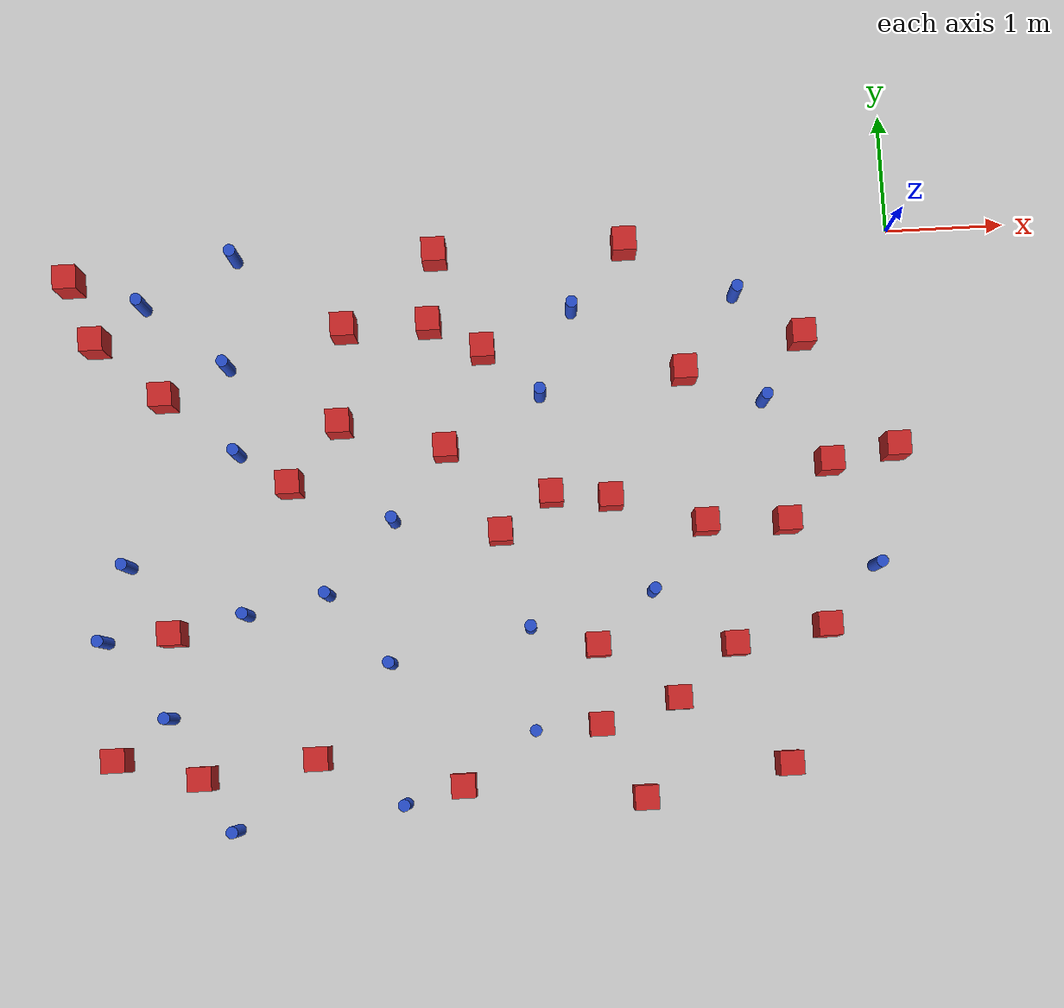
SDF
<sdf version="1.6">
 <world name="default">
  <model name="ground_plane">
   <static>1</static>
   <link name="link">
    <collision name="collision">
     <geometry><plane><normal>0 0 1</normal><size>100 100</size></plane></geometry>
     <surface><friction><ode><mu>100</mu><mu2>50</mu2></ode></friction></surface>
    </collision>
    <visual name="visual">
     <cast_shadows>0</cast_shadows>
     <geometry><plane><normal>0 0 1</normal><size>100 100</size></plane></geometry>
     <material>
      <ambient>1.0 1.0 1.0 1.0</ambient>
      <diffuse>0.8 0.8 0.8 1.0</diffuse>
      <specular>0.01 0.01 0.01 1.000000</specular>
     </material>
    </visual>
   </link>
  </model>
  <model name="NamedLocations">
   <static>true</static>
   <link name="DefaultStart"><pose>8.5 0 0 0 0 3.14</pose></link>
  </model>
  <model name="pole_obstacle3">
   <static>true</static>
   <pose>-3.22854497881 -3.2241212112 7.38925637345e-09 -8.47170692798e-08 1.24976764939e-08 -1.74513093025e-07</pose>
   <link name="link">
    <pose>0 0 0.3 0 -0 0</pose>
    <inertial>
     <mass>1</mass>
     <inertia><ixx>0.145833</ixx><ixy>0</ixy><ixz>0</ixz><iyy>0.145833</iyy><iyz>0</iyz><izz>0.125</izz></inertia>
    </inertial>
    <collision name="collision">
     <geometry><cylinder><radius>0.05</radius><length>.6</length></cylinder></geometry>
    </collision>
    <visual name="visual">
     <geometry><cylinder><radius>0.05</radius><length>.6</length></cylinder></geometry>
     <material>
      <script><name>Gazebo/Blue</name><uri>file://media/materials/scripts/gazebo.material</uri></script>
     </material>
    </visual>
   </link>
  </model>
  <model name="square_post_obstacle9">
   <static>true</static>
   <pose>-6.21314475476 -3.11580923219 1.91545236811e-07 -7.35059704564e-06 1.12565212e-07 2.39332434364e-05</pose>
   <link name="link">
    <pose>0 0 0.25 0 -0 0</pose>
    <inertial>
     <mass>100</mass>
     <inertia>
      <ixx>0.166667</ixx>
      <ixy>0</ixy>
      <ixz>0</ixz>
      <iyy>0.166667</iyy>
      <iyz>0</iyz>
      <izz>0.166667</izz>
     </inertia>
    </inertial>
    <collision name="collision"><geometry><box><size>.2 .2 .5</size></box></geometry></collision>
    <visual name="visual">
     <geometry><box><size>.2 .2 .5</size></box></geometry>
     <material>
      <script><name>Gazebo/Red</name><uri>file://media/materials/scripts/gazebo.material</uri></script>
     </material>
    </visual>
   </link>
  </model>
  <model name="square_post_obstacle10">
   <static>true</static>
   <pose>-0.647487318946 -1.97284515534 1.91545236811e-07 -7.35059704564e-06 1.12565212e-07 2.39332434364e-05</pose>
   <link name="link">
    <pose>0 0 0.25 0 -0 0</pose>
    <inertial>
     <mass>100</mass>
     <inertia>
      <ixx>0.166667</ixx>
      <ixy>0</ixy>
      <ixz>0</ixz>
      <iyy>0.166667</iyy>
      <iyz>0</iyz>
      <izz>0.166667</izz>
     </inertia>
    </inertial>
    <collision name="collision"><geometry><box><size>.2 .2 .5</size></box></geometry></collision>
    <visual name="visual">
     <geometry><box><size>.2 .2 .5</size></box></geometry>
     <material>
      <script><name>Gazebo/Red</name><uri>file://media/materials/scripts/gazebo.material</uri></script>
     </material>
    </visual>
   </link>
  </model>
  <model name="square_post_obstacle14">
   <static>true</static>
   <pose>-5.18274120243 -1.91572686425 1.91545236811e-07 -7.35059704564e-06 1.12565212e-07 2.39332434364e-05</pose>
   <link name="link">
    <pose>0 0 0.25 0 -0 0</pose>
    <inertial>
     <mass>100</mass>
     <inertia>
      <ixx>0.166667</ixx>
      <ixy>0</ixy>
      <ixz>0</ixz>
      <iyy>0.166667</iyy>
      <iyz>0</iyz>
      <izz>0.166667</izz>
     </inertia>
    </inertial>
    <collision name="collision"><geometry><box><size>.2 .2 .5</size></box></geometry></collision>
    <visual name="visual">
     <geometry><box><size>.2 .2 .5</size></box></geometry>
     <material>
      <script><name>Gazebo/Red</name><uri>file://media/materials/scripts/gazebo.material</uri></script>
     </material>
    </visual>
   </link>
  </model>
  <model name="square_post_obstacle17">
   <static>true</static>
   <pose>-1.71797052306 -2.42439164931 1.91545236811e-07 -7.35059704564e-06 1.12565212e-07 2.39332434364e-05</pose>
   <link name="link">
    <pose>0 0 0.25 0 -0 0</pose>
    <inertial>
     <mass>100</mass>
     <inertia>
      <ixx>0.166667</ixx>
      <ixy>0</ixy>
      <ixz>0</ixz>
      <iyy>0.166667</iyy>
      <iyz>0</iyz>
      <izz>0.166667</izz>
     </inertia>
    </inertial>
    <collision name="collision"><geometry><box><size>.2 .2 .5</size></box></geometry></collision>
    <visual name="visual">
     <geometry><box><size>.2 .2 .5</size></box></geometry>
     <material>
      <script><name>Gazebo/Red</name><uri>file://media/materials/scripts/gazebo.material</uri></script>
     </material>
    </visual>
   </link>
  </model>
  <model name="square_post_obstacle21">
   <static>true</static>
   <pose>-3.50732691726 -0.857823967843 1.91545236811e-07 -7.35059704564e-06 1.12565212e-07 2.39332434364e-05</pose>
   <link name="link">
    <pose>0 0 0.25 0 -0 0</pose>
    <inertial>
     <mass>100</mass>
     <inertia>
      <ixx>0.166667</ixx>
      <ixy>0</ixy>
      <ixz>0</ixz>
      <iyy>0.166667</iyy>
      <iyz>0</iyz>
      <izz>0.166667</izz>
     </inertia>
    </inertial>
    <collision name="collision"><geometry><box><size>.2 .2 .5</size></box></geometry></collision>
    <visual name="visual">
     <geometry><box><size>.2 .2 .5</size></box></geometry>
     <material>
      <script><name>Gazebo/Red</name><uri>file://media/materials/scripts/gazebo.material</uri></script>
     </material>
    </visual>
   </link>
  </model>
  <model name="square_post_obstacle24">
   <static>true</static>
   <pose>-4.74259793612 -1.42740261297 1.91545236811e-07 -7.35059704564e-06 1.12565212e-07 2.39332434364e-05</pose>
   <link name="link">
    <pose>0 0 0.25 0 -0 0</pose>
    <inertial>
     <mass>100</mass>
     <inertia>
      <ixx>0.166667</ixx>
      <ixy>0</ixy>
      <ixz>0</ixz>
      <iyy>0.166667</iyy>
      <iyz>0</iyz>
      <izz>0.166667</izz>
     </inertia>
    </inertial>
    <collision name="collision"><geometry><box><size>.2 .2 .5</size></box></geometry></collision>
    <visual name="visual">
     <geometry><box><size>.2 .2 .5</size></box></geometry>
     <material>
      <script><name>Gazebo/Red</name><uri>file://media/materials/scripts/gazebo.material</uri></script>
     </material>
    </visual>
   </link>
  </model>
  <model name="square_post_obstacle25">
   <static>true</static>
   <pose>-0.086212886297 -1.87562634025 1.91545236811e-07 -7.35059704564e-06 1.12565212e-07 2.39332434364e-05</pose>
   <link name="link">
    <pose>0 0 0.25 0 -0 0</pose>
    <inertial>
     <mass>100</mass>
     <inertia>
      <ixx>0.166667</ixx>
      <ixy>0</ixy>
      <ixz>0</ixz>
      <iyy>0.166667</iyy>
      <iyz>0</iyz>
      <izz>0.166667</izz>
     </inertia>
    </inertial>
    <collision name="collision"><geometry><box><size>.2 .2 .5</size></box></geometry></collision>
    <visual name="visual">
     <geometry><box><size>.2 .2 .5</size></box></geometry>
     <material>
      <script><name>Gazebo/Red</name><uri>file://media/materials/scripts/gazebo.material</uri></script>
     </material>
    </visual>
   </link>
  </model>
  <model name="pole_obstacle24">
   <static>true</static>
   <pose>-4.32802515514 -2.26667749467 7.38925637345e-09 -8.47170692798e-08 1.24976764937e-08 -1.74513093023e-07</pose>
   <link name="link">
    <pose>0 0 0.3 0 -0 0</pose>
    <inertial>
     <mass>1</mass>
     <inertia><ixx>0.145833</ixx><ixy>0</ixy><ixz>0</ixz><iyy>0.145833</iyy><iyz>0</iyz><izz>0.125</izz></inertia>
    </inertial>
    <collision name="collision">
     <geometry><cylinder><radius>0.05</radius><length>.6</length></cylinder></geometry>
    </collision>
    <visual name="visual">
     <geometry><cylinder><radius>0.05</radius><length>.6</length></cylinder></geometry>
     <material>
      <script><name>Gazebo/Blue</name><uri>file://media/materials/scripts/gazebo.material</uri></script>
     </material>
    </visual>
   </link>
  </model>
  <model name="pole_obstacle25">
   <static>true</static>
   <pose>-1.16329254823 -1.415198224 7.38925637345e-09 -8.471706928e-08 1.24976765079e-08 -1.74513093017e-07</pose>
   <link name="link">
    <pose>0 0 0.3 0 -0 0</pose>
    <inertial>
     <mass>1</mass>
     <inertia><ixx>0.145833</ixx><ixy>0</ixy><ixz>0</ixz><iyy>0.145833</iyy><iyz>0</iyz><izz>0.125</izz></inertia>
    </inertial>
    <collision name="collision">
     <geometry><cylinder><radius>0.05</radius><length>.6</length></cylinder></geometry>
    </collision>
    <visual name="visual">
     <geometry><cylinder><radius>0.05</radius><length>.6</length></cylinder></geometry>
     <material>
      <script><name>Gazebo/Blue</name><uri>file://media/materials/scripts/gazebo.material</uri></script>
     </material>
    </visual>
   </link>
  </model>
  <model name="pole_obstacle27">
   <static>true</static>
   <pose>-5.74672465251 -4.76837645769 7.38925637345e-09 -8.47170692796e-08 1.24976764786e-08 -1.74513093032e-07</pose>
   <link name="link">
    <pose>0 0 0.3 0 -0 0</pose>
    <inertial>
     <mass>1</mass>
     <inertia><ixx>0.145833</ixx><ixy>0</ixy><ixz>0</ixz><iyy>0.145833</iyy><iyz>0</iyz><izz>0.125</izz></inertia>
    </inertial>
    <collision name="collision">
     <geometry><cylinder><radius>0.05</radius><length>.6</length></cylinder></geometry>
    </collision>
    <visual name="visual">
     <geometry><cylinder><radius>0.05</radius><length>.6</length></cylinder></geometry>
     <material>
      <script><name>Gazebo/Blue</name><uri>file://media/materials/scripts/gazebo.material</uri></script>
     </material>
    </visual>
   </link>
  </model>
  <model name="square_post_obstacle32">
   <static>true</static>
   <pose>-3.43588751057 -2.40915940986 1.91545236811e-07 -7.35059704564e-06 1.12565212e-07 2.39332434364e-05</pose>
   <link name="link">
    <pose>0 0 0.25 0 -0 0</pose>
    <inertial>
     <mass>100</mass>
     <inertia>
      <ixx>0.166667</ixx>
      <ixy>0</ixy>
      <ixz>0</ixz>
      <iyy>0.166667</iyy>
      <iyz>0</iyz>
      <izz>0.166667</izz>
     </inertia>
    </inertial>
    <collision name="collision"><geometry><box><size>.2 .2 .5</size></box></geometry></collision>
    <visual name="visual">
     <geometry><box><size>.2 .2 .5</size></box></geometry>
     <material>
      <script><name>Gazebo/Red</name><uri>file://media/materials/scripts/gazebo.material</uri></script>
     </material>
    </visual>
   </link>
  </model>
  <model name="pole_obstacle30">
   <static>true</static>
   <pose>-6.35883680301 -0.332967924212 7.38925637345e-09 -8.47170692798e-08 1.24976765003e-08 -1.7451309302e-07</pose>
   <link name="link">
    <pose>0 0 0.3 0 -0 0</pose>
    <inertial>
     <mass>1</mass>
     <inertia><ixx>0.145833</ixx><ixy>0</ixy><ixz>0</ixz><iyy>0.145833</iyy><iyz>0</iyz><izz>0.125</izz></inertia>
    </inertial>
    <collision name="collision">
     <geometry><cylinder><radius>0.05</radius><length>.6</length></cylinder></geometry>
    </collision>
    <visual name="visual">
     <geometry><cylinder><radius>0.05</radius><length>.6</length></cylinder></geometry>
     <material>
      <script><name>Gazebo/Blue</name><uri>file://media/materials/scripts/gazebo.material</uri></script>
     </material>
    </visual>
   </link>
  </model>
  <model name="pole_obstacle31">
   <static>true</static>
   <pose>-1.35423960804 -0.498178328608 7.38925637345e-09 -8.47170692799e-08 1.24976765044e-08 -1.74513093018e-07</pose>
   <link name="link">
    <pose>0 0 0.3 0 -0 0</pose>
    <inertial>
     <mass>1</mass>
     <inertia><ixx>0.145833</ixx><ixy>0</ixy><ixz>0</ixz><iyy>0.145833</iyy><iyz>0</iyz><izz>0.125</izz></inertia>
    </inertial>
    <collision name="collision">
     <geometry><cylinder><radius>0.05</radius><length>.6</length></cylinder></geometry>
    </collision>
    <visual name="visual">
     <geometry><cylinder><radius>0.05</radius><length>.6</length></cylinder></geometry>
     <material>
      <script><name>Gazebo/Blue</name><uri>file://media/materials/scripts/gazebo.material</uri></script>
     </material>
    </visual>
   </link>
  </model>
  <model name="square_post_obstacle42">
   <static>true</static>
   <pose>-1.82140552525 -1.13301786784 1.91545236811e-07 -7.35059704564e-06 1.12565212e-07 2.39332434364e-05</pose>
   <link name="link">
    <pose>0 0 0.25 0 -0 0</pose>
    <inertial>
     <mass>100</mass>
     <inertia>
      <ixx>0.166667</ixx>
      <ixy>0</ixy>
      <ixz>0</ixz>
      <iyy>0.166667</iyy>
      <iyz>0</iyz>
      <izz>0.166667</izz>
     </inertia>
    </inertial>
    <collision name="collision"><geometry><box><size>.2 .2 .5</size></box></geometry></collision>
    <visual name="visual">
     <geometry><box><size>.2 .2 .5</size></box></geometry>
     <material>
      <script><name>Gazebo/Red</name><uri>file://media/materials/scripts/gazebo.material</uri></script>
     </material>
    </visual>
   </link>
  </model>
  <model name="square_post_obstacle58">
   <static>true</static>
   <pose>-3.85292107735 -4.50054488396 1.91545236811e-07 -7.35059704564e-06 1.12565212e-07 2.39332434364e-05</pose>
   <link name="link">
    <pose>0 0 0.25 0 -0 0</pose>
    <inertial>
     <mass>100</mass>
     <inertia>
      <ixx>0.166667</ixx>
      <ixy>0</ixy>
      <ixz>0</ixz>
      <iyy>0.166667</iyy>
      <iyz>0</iyz>
      <izz>0.166667</izz>
     </inertia>
    </inertial>
    <collision name="collision"><geometry><box><size>.2 .2 .5</size></box></geometry></collision>
    <visual name="visual">
     <geometry><box><size>.2 .2 .5</size></box></geometry>
     <material>
      <script><name>Gazebo/Red</name><uri>file://media/materials/scripts/gazebo.material</uri></script>
     </material>
    </visual>
   </link>
  </model>
  <model name="pole_obstacle57">
   <static>true</static>
   <pose>-5.60784473028 -1.63386733325 7.38925637345e-09 -8.471706928e-08 1.24976765134e-08 -1.74513093015e-07</pose>
   <link name="link">
    <pose>0 0 0.3 0 -0 0</pose>
    <inertial>
     <mass>1</mass>
     <inertia><ixx>0.145833</ixx><ixy>0</ixy><ixz>0</ixz><iyy>0.145833</iyy><iyz>0</iyz><izz>0.125</izz></inertia>
    </inertial>
    <collision name="collision">
     <geometry><cylinder><radius>0.05</radius><length>.6</length></cylinder></geometry>
    </collision>
    <visual name="visual">
     <geometry><cylinder><radius>0.05</radius><length>.6</length></cylinder></geometry>
     <material>
      <script><name>Gazebo/Blue</name><uri>file://media/materials/scripts/gazebo.material</uri></script>
     </material>
    </visual>
   </link>
  </model>
  <model name="square_post_obstacle62">
   <static>true</static>
   <pose>-3.95068067496 -0.612505758694 1.91545236811e-07 -7.35059704564e-06 1.12565212e-07 2.39332434364e-05</pose>
   <link name="link">
    <pose>0 0 0.25 0 -0 0</pose>
    <inertial>
     <mass>100</mass>
     <inertia>
      <ixx>0.166667</ixx>
      <ixy>0</ixy>
      <ixz>0</ixz>
      <iyy>0.166667</iyy>
      <iyz>0</iyz>
      <izz>0.166667</izz>
     </inertia>
    </inertial>
    <collision name="collision"><geometry><box><size>.2 .2 .5</size></box></geometry></collision>
    <visual name="visual">
     <geometry><box><size>.2 .2 .5</size></box></geometry>
     <material>
      <script><name>Gazebo/Red</name><uri>file://media/materials/scripts/gazebo.material</uri></script>
     </material>
    </visual>
   </link>
  </model>
  <model name="square_post_obstacle73">
   <static>true</static>
   <pose>-2.26619205276 -0.0246965889448 1.91545236811e-07 -7.35059704564e-06 1.12565212e-07 2.39332434364e-05</pose>
   <link name="link">
    <pose>0 0 0.25 0 -0 0</pose>
    <inertial>
     <mass>100</mass>
     <inertia>
      <ixx>0.166667</ixx>
      <ixy>0</ixy>
      <ixz>0</ixz>
      <iyy>0.166667</iyy>
      <iyz>0</iyz>
      <izz>0.166667</izz>
     </inertia>
    </inertial>
    <collision name="collision"><geometry><box><size>.2 .2 .5</size></box></geometry></collision>
    <visual name="visual">
     <geometry><box><size>.2 .2 .5</size></box></geometry>
     <material>
      <script><name>Gazebo/Red</name><uri>file://media/materials/scripts/gazebo.material</uri></script>
     </material>
    </visual>
   </link>
  </model>
  <model name="pole_obstacle71">
   <static>true</static>
   <pose>-2.73981493945 -0.557301866071 7.38925637345e-09 -8.471706928e-08 1.24976765177e-08 -1.74513093012e-07</pose>
   <link name="link">
    <pose>0 0 0.3 0 -0 0</pose>
    <inertial>
     <mass>1</mass>
     <inertia><ixx>0.145833</ixx><ixy>0</ixy><ixz>0</ixz><iyy>0.145833</iyy><iyz>0</iyz><izz>0.125</izz></inertia>
    </inertial>
    <collision name="collision">
     <geometry><cylinder><radius>0.05</radius><length>.6</length></cylinder></geometry>
    </collision>
    <visual name="visual">
     <geometry><cylinder><radius>0.05</radius><length>.6</length></cylinder></geometry>
     <material>
      <script><name>Gazebo/Blue</name><uri>file://media/materials/scripts/gazebo.material</uri></script>
     </material>
    </visual>
   </link>
  </model>
  <model name="pole_obstacle73">
   <static>true</static>
   <pose>-2.18673247515 -2.97332954531 7.38925637345e-09 -8.47170692798e-08 1.24976764939e-08 -1.74513093025e-07</pose>
   <link name="link">
    <pose>0 0 0.3 0 -0 0</pose>
    <inertial>
     <mass>1</mass>
     <inertia><ixx>0.145833</ixx><ixy>0</ixy><ixz>0</ixz><iyy>0.145833</iyy><iyz>0</iyz><izz>0.125</izz></inertia>
    </inertial>
    <collision name="collision">
     <geometry><cylinder><radius>0.05</radius><length>.6</length></cylinder></geometry>
    </collision>
    <visual name="visual">
     <geometry><cylinder><radius>0.05</radius><length>.6</length></cylinder></geometry>
     <material>
      <script><name>Gazebo/Blue</name><uri>file://media/materials/scripts/gazebo.material</uri></script>
     </material>
    </visual>
   </link>
  </model>
  <model name="pole_obstacle76">
   <static>true</static>
   <pose>-6.26260807968 -3.81264938386 7.38925637345e-09 -8.47170692798e-08 1.24976764937e-08 -1.74513093023e-07</pose>
   <link name="link">
    <pose>0 0 0.3 0 -0 0</pose>
    <inertial>
     <mass>1</mass>
     <inertia><ixx>0.145833</ixx><ixy>0</ixy><ixz>0</ixz><iyy>0.145833</iyy><iyz>0</iyz><izz>0.125</izz></inertia>
    </inertial>
    <collision name="collision">
     <geometry><cylinder><radius>0.05</radius><length>.6</length></cylinder></geometry>
    </collision>
    <visual name="visual">
     <geometry><cylinder><radius>0.05</radius><length>.6</length></cylinder></geometry>
     <material>
      <script><name>Gazebo/Blue</name><uri>file://media/materials/scripts/gazebo.material</uri></script>
     </material>
    </visual>
   </link>
  </model>
  <model name="pole_obstacle83">
   <static>true</static>
   <pose>-3.23226059575 -4.08240542573 7.38925637345e-09 -8.47170692798e-08 1.24976765033e-08 -1.74513093019e-07</pose>
   <link name="link">
    <pose>0 0 0.3 0 -0 0</pose>
    <inertial>
     <mass>1</mass>
     <inertia><ixx>0.145833</ixx><ixy>0</ixy><ixz>0</ixz><iyy>0.145833</iyy><iyz>0</iyz><izz>0.125</izz></inertia>
    </inertial>
    <collision name="collision">
     <geometry><cylinder><radius>0.05</radius><length>.6</length></cylinder></geometry>
    </collision>
    <visual name="visual">
     <geometry><cylinder><radius>0.05</radius><length>.6</length></cylinder></geometry>
     <material>
      <script><name>Gazebo/Blue</name><uri>file://media/materials/scripts/gazebo.material</uri></script>
     </material>
    </visual>
   </link>
  </model>
  <model name="square_post_obstacle90">
   <static>true</static>
   <pose>-6.01070426775 -4.32413386013 1.91545236811e-07 -7.35059704564e-06 1.12565212e-07 2.39332434364e-05</pose>
   <link name="link">
    <pose>0 0 0.25 0 -0 0</pose>
    <inertial>
     <mass>100</mass>
     <inertia>
      <ixx>0.166667</ixx>
      <ixy>0</ixy>
      <ixz>0</ixz>
      <iyy>0.166667</iyy>
      <iyz>0</iyz>
      <izz>0.166667</izz>
     </inertia>
    </inertial>
    <collision name="collision"><geometry><box><size>.2 .2 .5</size></box></geometry></collision>
    <visual name="visual">
     <geometry><box><size>.2 .2 .5</size></box></geometry>
     <material>
      <script><name>Gazebo/Red</name><uri>file://media/materials/scripts/gazebo.material</uri></script>
     </material>
    </visual>
   </link>
  </model>
  <model name="square_post_obstacle92">
   <static>true</static>
   <pose>-2.03351375526 -3.87457362817 1.91545236811e-07 -7.35059704564e-06 1.12565212e-07 2.39332434364e-05</pose>
   <link name="link">
    <pose>0 0 0.25 0 -0 0</pose>
    <inertial>
     <mass>100</mass>
     <inertia>
      <ixx>0.166667</ixx>
      <ixy>0</ixy>
      <ixz>0</ixz>
      <iyy>0.166667</iyy>
      <iyz>0</iyz>
      <izz>0.166667</izz>
     </inertia>
    </inertial>
    <collision name="collision"><geometry><box><size>.2 .2 .5</size></box></geometry></collision>
    <visual name="visual">
     <geometry><box><size>.2 .2 .5</size></box></geometry>
     <material>
      <script><name>Gazebo/Red</name><uri>file://media/materials/scripts/gazebo.material</uri></script>
     </material>
    </visual>
   </link>
  </model>
  <model name="pole_obstacle105">
   <static>true</static>
   <pose>-6.56524706427 -2.53116209684 7.38925637345e-09 -8.47170692798e-08 1.24976764937e-08 -1.74513093023e-07</pose>
   <link name="link">
    <pose>0 0 0.3 0 -0 0</pose>
    <inertial>
     <mass>1</mass>
     <inertia><ixx>0.145833</ixx><ixy>0</ixy><ixz>0</ixz><iyy>0.145833</iyy><iyz>0</iyz><izz>0.125</izz></inertia>
    </inertial>
    <collision name="collision">
     <geometry><cylinder><radius>0.05</radius><length>.6</length></cylinder></geometry>
    </collision>
    <visual name="visual">
     <geometry><cylinder><radius>0.05</radius><length>.6</length></cylinder></geometry>
     <material>
      <script><name>Gazebo/Blue</name><uri>file://media/materials/scripts/gazebo.material</uri></script>
     </material>
    </visual>
   </link>
  </model>
  <model name="square_post_obstacle100">
   <static>true</static>
   <pose>-2.50012235484 -2.16924471913 1.91545236811e-07 -7.35059704564e-06 1.12565212e-07 2.39332434364e-05</pose>
   <link name="link">
    <pose>0 0 0.25 0 -0 0</pose>
    <inertial>
     <mass>100</mass>
     <inertia>
      <ixx>0.166667</ixx>
      <ixy>0</ixy>
      <ixz>0</ixz>
      <iyy>0.166667</iyy>
      <iyz>0</iyz>
      <izz>0.166667</izz>
     </inertia>
    </inertial>
    <collision name="collision"><geometry><box><size>.2 .2 .5</size></box></geometry></collision>
    <visual name="visual">
     <geometry><box><size>.2 .2 .5</size></box></geometry>
     <material>
      <script><name>Gazebo/Red</name><uri>file://media/materials/scripts/gazebo.material</uri></script>
     </material>
    </visual>
   </link>
  </model>
  <model name="pole_obstacle118">
   <static>true</static>
   <pose>-5.56625554063 0.0372700426891 7.38925637345e-09 -8.471706928e-08 1.24976765155e-08 -1.74513093014e-07</pose>
   <link name="link">
    <pose>0 0 0.3 0 -0 0</pose>
    <inertial>
     <mass>1</mass>
     <inertia><ixx>0.145833</ixx><ixy>0</ixy><ixz>0</ixz><iyy>0.145833</iyy><iyz>0</iyz><izz>0.125</izz></inertia>
    </inertial>
    <collision name="collision">
     <geometry><cylinder><radius>0.05</radius><length>.6</length></cylinder></geometry>
    </collision>
    <visual name="visual">
     <geometry><cylinder><radius>0.05</radius><length>.6</length></cylinder></geometry>
     <material>
      <script><name>Gazebo/Blue</name><uri>file://media/materials/scripts/gazebo.material</uri></script>
     </material>
    </visual>
   </link>
  </model>
  <model name="square_post_obstacle103">
   <static>true</static>
   <pose>-0.756568824874 -3.33943078981 1.91545236811e-07 -7.35059704564e-06 1.12565212e-07 2.39332434364e-05</pose>
   <link name="link">
    <pose>0 0 0.25 0 -0 0</pose>
    <inertial>
     <mass>100</mass>
     <inertia>
      <ixx>0.166667</ixx>
      <ixy>0</ixy>
      <ixz>0</ixz>
      <iyy>0.166667</iyy>
      <iyz>0</iyz>
      <izz>0.166667</izz>
     </inertia>
    </inertial>
    <collision name="collision"><geometry><box><size>.2 .2 .5</size></box></geometry></collision>
    <visual name="visual">
     <geometry><box><size>.2 .2 .5</size></box></geometry>
     <material>
      <script><name>Gazebo/Red</name><uri>file://media/materials/scripts/gazebo.material</uri></script>
     </material>
    </visual>
   </link>
  </model>
  <model name="square_post_obstacle105">
   <static>true</static>
   <pose>-2.99747389848 -2.11217186506 1.91545236811e-07 -7.35059704564e-06 1.12565212e-07 2.39332434364e-05</pose>
   <link name="link">
    <pose>0 0 0.25 0 -0 0</pose>
    <inertial>
     <mass>100</mass>
     <inertia>
      <ixx>0.166667</ixx>
      <ixy>0</ixy>
      <ixz>0</ixz>
      <iyy>0.166667</iyy>
      <iyz>0</iyz>
      <izz>0.166667</izz>
     </inertia>
    </inertial>
    <collision name="collision"><geometry><box><size>.2 .2 .5</size></box></geometry></collision>
    <visual name="visual">
     <geometry><box><size>.2 .2 .5</size></box></geometry>
     <material>
      <script><name>Gazebo/Red</name><uri>file://media/materials/scripts/gazebo.material</uri></script>
     </material>
    </visual>
   </link>
  </model>
  <model name="square_post_obstacle107">
   <static>true</static>
   <pose>-0.812183213032 -0.887658676757 1.91545236811e-07 -7.35059704564e-06 1.12565212e-07 2.39332434364e-05</pose>
   <link name="link">
    <pose>0 0 0.25 0 -0 0</pose>
    <inertial>
     <mass>100</mass>
     <inertia>
      <ixx>0.166667</ixx>
      <ixy>0</ixy>
      <ixz>0</ixz>
      <iyy>0.166667</iyy>
      <iyz>0</iyz>
      <izz>0.166667</izz>
     </inertia>
    </inertial>
    <collision name="collision"><geometry><box><size>.2 .2 .5</size></box></geometry></collision>
    <visual name="visual">
     <geometry><box><size>.2 .2 .5</size></box></geometry>
     <material>
      <script><name>Gazebo/Red</name><uri>file://media/materials/scripts/gazebo.material</uri></script>
     </material>
    </visual>
   </link>
  </model>
  <model name="square_post_obstacle113">
   <static>true</static>
   <pose>-6.77096901745 -0.62651866775 1.91545236811e-07 -7.35059704564e-06 1.12565212e-07 2.39332434364e-05</pose>
   <link name="link">
    <pose>0 0 0.25 0 -0 0</pose>
    <inertial>
     <mass>100</mass>
     <inertia>
      <ixx>0.166667</ixx>
      <ixy>0</ixy>
      <ixz>0</ixz>
      <iyy>0.166667</iyy>
      <iyz>0</iyz>
      <izz>0.166667</izz>
     </inertia>
    </inertial>
    <collision name="collision"><geometry><box><size>.2 .2 .5</size></box></geometry></collision>
    <visual name="visual">
     <geometry><box><size>.2 .2 .5</size></box></geometry>
     <material>
      <script><name>Gazebo/Red</name><uri>file://media/materials/scripts/gazebo.material</uri></script>
     </material>
    </visual>
   </link>
  </model>
  <model name="square_post_obstacle114">
   <static>true</static>
   <pose>-3.8724064125 -0.0258737165335 1.91545236811e-07 -7.35059704564e-06 1.12565212e-07 2.39332434364e-05</pose>
   <link name="link">
    <pose>0 0 0.25 0 -0 0</pose>
    <inertial>
     <mass>100</mass>
     <inertia>
      <ixx>0.166667</ixx>
      <ixy>0</ixy>
      <ixz>0</ixz>
      <iyy>0.166667</iyy>
      <iyz>0</iyz>
      <izz>0.166667</izz>
     </inertia>
    </inertial>
    <collision name="collision"><geometry><box><size>.2 .2 .5</size></box></geometry></collision>
    <visual name="visual">
     <geometry><box><size>.2 .2 .5</size></box></geometry>
     <material>
      <script><name>Gazebo/Red</name><uri>file://media/materials/scripts/gazebo.material</uri></script>
     </material>
    </visual>
   </link>
  </model>
  <model name="pole_obstacle134">
   <static>true</static>
   <pose>-4.40989298185 -3.45798034174 7.38925637345e-09 -8.47170692798e-08 1.24976764937e-08 -1.74513093023e-07</pose>
   <link name="link">
    <pose>0 0 0.3 0 -0 0</pose>
    <inertial>
     <mass>1</mass>
     <inertia><ixx>0.145833</ixx><ixy>0</ixy><ixz>0</ixz><iyy>0.145833</iyy><iyz>0</iyz><izz>0.125</izz></inertia>
    </inertial>
    <collision name="collision">
     <geometry><cylinder><radius>0.05</radius><length>.6</length></cylinder></geometry>
    </collision>
    <visual name="visual">
     <geometry><cylinder><radius>0.05</radius><length>.6</length></cylinder></geometry>
     <material>
      <script><name>Gazebo/Blue</name><uri>file://media/materials/scripts/gazebo.material</uri></script>
     </material>
    </visual>
   </link>
  </model>
  <model name="square_post_obstacle117">
   <static>true</static>
   <pose>-6.71191002705 -4.13513495221 1.91545236811e-07 -7.35059704564e-06 1.12565212e-07 2.39332434364e-05</pose>
   <link name="link">
    <pose>0 0 0.25 0 -0 0</pose>
    <inertial>
     <mass>100</mass>
     <inertia>
      <ixx>0.166667</ixx>
      <ixy>0</ixy>
      <ixz>0</ixz>
      <iyy>0.166667</iyy>
      <iyz>0</iyz>
      <izz>0.166667</izz>
     </inertia>
    </inertial>
    <collision name="collision"><geometry><box><size>.2 .2 .5</size></box></geometry></collision>
    <visual name="visual">
     <geometry><box><size>.2 .2 .5</size></box></geometry>
     <material>
      <script><name>Gazebo/Red</name><uri>file://media/materials/scripts/gazebo.material</uri></script>
     </material>
    </visual>
   </link>
  </model>
  <model name="pole_obstacle137">
   <static>true</static>
   <pose>-4.90807056404 -2.85562108474 7.38925637345e-09 -8.47170692798e-08 1.24976764937e-08 -1.74513093023e-07</pose>
   <link name="link">
    <pose>0 0 0.3 0 -0 0</pose>
    <inertial>
     <mass>1</mass>
     <inertia><ixx>0.145833</ixx><ixy>0</ixy><ixz>0</ixz><iyy>0.145833</iyy><iyz>0</iyz><izz>0.125</izz></inertia>
    </inertial>
    <collision name="collision">
     <geometry><cylinder><radius>0.05</radius><length>.6</length></cylinder></geometry>
    </collision>
    <visual name="visual">
     <geometry><cylinder><radius>0.05</radius><length>.6</length></cylinder></geometry>
     <material>
      <script><name>Gazebo/Blue</name><uri>file://media/materials/scripts/gazebo.material</uri></script>
     </material>
    </visual>
   </link>
  </model>
  <model name="square_post_obstacle139">
   <static>true</static>
   <pose>-2.35473990087 -4.67794066846 1.91545236811e-07 -7.35059704564e-06 1.12565212e-07 2.39332434364e-05</pose>
   <link name="link">
    <pose>0 0 0.25 0 -0 0</pose>
    <inertial>
     <mass>100</mass>
     <inertia>
      <ixx>0.166667</ixx>
      <ixy>0</ixy>
      <ixz>0</ixz>
      <iyy>0.166667</iyy>
      <iyz>0</iyz>
      <izz>0.166667</izz>
     </inertia>
    </inertial>
    <collision name="collision"><geometry><box><size>.2 .2 .5</size></box></geometry></collision>
    <visual name="visual">
     <geometry><box><size>.2 .2 .5</size></box></geometry>
     <material>
      <script><name>Gazebo/Red</name><uri>file://media/materials/scripts/gazebo.material</uri></script>
     </material>
    </visual>
   </link>
  </model>
  <model name="square_post_obstacle142">
   <static>true</static>
   <pose>-3.86069716783 -1.67816767756 1.91545236811e-07 -7.35059704564e-06 1.12565212e-07 2.39332434364e-05</pose>
   <link name="link">
    <pose>0 0 0.25 0 -0 0</pose>
    <inertial>
     <mass>100</mass>
     <inertia>
      <ixx>0.166667</ixx>
      <ixy>0</ixy>
      <ixz>0</ixz>
      <iyy>0.166667</iyy>
      <iyz>0</iyz>
      <izz>0.166667</izz>
     </inertia>
    </inertial>
    <collision name="collision"><geometry><box><size>.2 .2 .5</size></box></geometry></collision>
    <visual name="visual">
     <geometry><box><size>.2 .2 .5</size></box></geometry>
     <material>
      <script><name>Gazebo/Red</name><uri>file://media/materials/scripts/gazebo.material</uri></script>
     </material>
    </visual>
   </link>
  </model>
  <model name="pole_obstacle156">
   <static>true</static>
   <pose>-3.04466185681 -1.26559410753 7.38925637345e-09 -8.47170692796e-08 1.24976764713e-08 -1.74513093037e-07</pose>
   <link name="link">
    <pose>0 0 0.3 0 -0 0</pose>
    <inertial>
     <mass>1</mass>
     <inertia><ixx>0.145833</ixx><ixy>0</ixy><ixz>0</ixz><iyy>0.145833</iyy><iyz>0</iyz><izz>0.125</izz></inertia>
    </inertial>
    <collision name="collision">
     <geometry><cylinder><radius>0.05</radius><length>.6</length></cylinder></geometry>
    </collision>
    <visual name="visual">
     <geometry><cylinder><radius>0.05</radius><length>.6</length></cylinder></geometry>
     <material>
      <script><name>Gazebo/Blue</name><uri>file://media/materials/scripts/gazebo.material</uri></script>
     </material>
    </visual>
   </link>
  </model>
  <model name="square_post_obstacle147">
   <static>true</static>
   <pose>-6.96954587821 -0.0895995581269 1.91545236811e-07 -7.35059704564e-06 1.12565212e-07 2.39332434364e-05</pose>
   <link name="link">
    <pose>0 0 0.25 0 -0 0</pose>
    <inertial>
     <mass>100</mass>
     <inertia>
      <ixx>0.166667</ixx>
      <ixy>0</ixy>
      <ixz>0</ixz>
      <iyy>0.166667</iyy>
      <iyz>0</iyz>
      <izz>0.166667</izz>
     </inertia>
    </inertial>
    <collision name="collision"><geometry><box><size>.2 .2 .5</size></box></geometry></collision>
    <visual name="visual">
     <geometry><box><size>.2 .2 .5</size></box></geometry>
     <material>
      <script><name>Gazebo/Red</name><uri>file://media/materials/scripts/gazebo.material</uri></script>
     </material>
    </visual>
   </link>
  </model>
  <model name="square_post_obstacle148">
   <static>true</static>
   <pose>-2.67841815693 -3.40083355895 1.91545236811e-07 -7.35059704564e-06 1.12565212e-07 2.39332434364e-05</pose>
   <link name="link">
    <pose>0 0 0.25 0 -0 0</pose>
    <inertial>
     <mass>100</mass>
     <inertia>
      <ixx>0.166667</ixx>
      <ixy>0</ixy>
      <ixz>0</ixz>
      <iyy>0.166667</iyy>
      <iyz>0</iyz>
      <izz>0.166667</izz>
     </inertia>
    </inertial>
    <collision name="collision"><geometry><box><size>.2 .2 .5</size></box></geometry></collision>
    <visual name="visual">
     <geometry><box><size>.2 .2 .5</size></box></geometry>
     <material>
      <script><name>Gazebo/Red</name><uri>file://media/materials/scripts/gazebo.material</uri></script>
     </material>
    </visual>
   </link>
  </model>
  <model name="square_post_obstacle150">
   <static>true</static>
   <pose>-5.04904254309 -4.21358980495 1.91545236811e-07 -7.35059704564e-06 1.12565212e-07 2.39332434364e-05</pose>
   <link name="link">
    <pose>0 0 0.25 0 -0 0</pose>
    <inertial>
     <mass>100</mass>
     <inertia>
      <ixx>0.166667</ixx>
      <ixy>0</ixy>
      <ixz>0</ixz>
      <iyy>0.166667</iyy>
      <iyz>0</iyz>
      <izz>0.166667</izz>
     </inertia>
    </inertial>
    <collision name="collision"><geometry><box><size>.2 .2 .5</size></box></geometry></collision>
    <visual name="visual">
     <geometry><box><size>.2 .2 .5</size></box></geometry>
     <material>
      <script><name>Gazebo/Red</name><uri>file://media/materials/scripts/gazebo.material</uri></script>
     </material>
    </visual>
   </link>
  </model>
  <model name="square_post_obstacle152">
   <static>true</static>
   <pose>-4.66687303242 -0.616819148171 1.91545236811e-07 -7.35059704564e-06 1.12565212e-07 2.39332434364e-05</pose>
   <link name="link">
    <pose>0 0 0.25 0 -0 0</pose>
    <inertial>
     <mass>100</mass>
     <inertia>
      <ixx>0.166667</ixx>
      <ixy>0</ixy>
      <ixz>0</ixz>
      <iyy>0.166667</iyy>
      <iyz>0</iyz>
      <izz>0.166667</izz>
     </inertia>
    </inertial>
    <collision name="collision"><geometry><box><size>.2 .2 .5</size></box></geometry></collision>
    <visual name="visual">
     <geometry><box><size>.2 .2 .5</size></box></geometry>
     <material>
      <script><name>Gazebo/Red</name><uri>file://media/materials/scripts/gazebo.material</uri></script>
     </material>
    </visual>
   </link>
  </model>
  <model name="pole_obstacle160">
   <static>true</static>
   <pose>-6.7849583787 -3.1516741466 7.38925637345e-09 -8.47170692798e-08 1.24976764937e-08 -1.74513093023e-07</pose>
   <link name="link">
    <pose>0 0 0.3 0 -0 0</pose>
    <inertial>
     <mass>1</mass>
     <inertia><ixx>0.145833</ixx><ixy>0</ixy><ixz>0</ixz><iyy>0.145833</iyy><iyz>0</iyz><izz>0.125</izz></inertia>
    </inertial>
    <collision name="collision">
     <geometry><cylinder><radius>0.05</radius><length>.6</length></cylinder></geometry>
    </collision>
    <visual name="visual">
     <geometry><cylinder><radius>0.05</radius><length>.6</length></cylinder></geometry>
     <material>
      <script><name>Gazebo/Blue</name><uri>file://media/materials/scripts/gazebo.material</uri></script>
     </material>
    </visual>
   </link>
  </model>
  <model name="square_post_obstacle155">
   <static>true</static>
   <pose>-1.03399236464 -2.44980473759 1.91545236811e-07 -7.35059704564e-06 1.12565212e-07 2.39332434364e-05</pose>
   <link name="link">
    <pose>0 0 0.25 0 -0 0</pose>
    <inertial>
     <mass>100</mass>
     <inertia>
      <ixx>0.166667</ixx>
      <ixy>0</ixy>
      <ixz>0</ixz>
      <iyy>0.166667</iyy>
      <iyz>0</iyz>
      <izz>0.166667</izz>
     </inertia>
    </inertial>
    <collision name="collision"><geometry><box><size>.2 .2 .5</size></box></geometry></collision>
    <visual name="visual">
     <geometry><box><size>.2 .2 .5</size></box></geometry>
     <material>
      <script><name>Gazebo/Red</name><uri>file://media/materials/scripts/gazebo.material</uri></script>
     </material>
    </visual>
   </link>
  </model>
  <model name="square_post_obstacle160">
   <static>true</static>
   <pose>-1.15039579937 -4.46305904067 1.91545236811e-07 -7.35059704564e-06 1.12565212e-07 2.39332434364e-05</pose>
   <link name="link">
    <pose>0 0 0.25 0 -0 0</pose>
    <inertial>
     <mass>100</mass>
     <inertia>
      <ixx>0.166667</ixx>
      <ixy>0</ixy>
      <ixz>0</ixz>
      <iyy>0.166667</iyy>
      <iyz>0</iyz>
      <izz>0.166667</izz>
     </inertia>
    </inertial>
    <collision name="collision"><geometry><box><size>.2 .2 .5</size></box></geometry></collision>
    <visual name="visual">
     <geometry><box><size>.2 .2 .5</size></box></geometry>
     <material>
      <script><name>Gazebo/Red</name><uri>file://media/materials/scripts/gazebo.material</uri></script>
     </material>
    </visual>
   </link>
  </model>
  <model name="square_post_obstacle163">
   <static>true</static>
   <pose>-6.21092027508 -1.12406775537 1.91545236811e-07 -7.35059704564e-06 1.12565212e-07 2.39332434364e-05</pose>
   <link name="link">
    <pose>0 0 0.25 0 -0 0</pose>
    <inertial>
     <mass>100</mass>
     <inertia>
      <ixx>0.166667</ixx>
      <ixy>0</ixy>
      <ixz>0</ixz>
      <iyy>0.166667</iyy>
      <iyz>0</iyz>
      <izz>0.166667</izz>
     </inertia>
    </inertial>
    <collision name="collision"><geometry><box><size>.2 .2 .5</size></box></geometry></collision>
    <visual name="visual">
     <geometry><box><size>.2 .2 .5</size></box></geometry>
     <material>
      <script><name>Gazebo/Red</name><uri>file://media/materials/scripts/gazebo.material</uri></script>
     </material>
    </visual>
   </link>
  </model>
  <model name="pole_obstacle185">
   <static>true</static>
   <pose>-5.59111350822 -2.989603431 7.38925637345e-09 -8.47170692798e-08 1.24976764937e-08 -1.74513093023e-07</pose>
   <link name="link">
    <pose>0 0 0.3 0 -0 0</pose>
    <inertial>
     <mass>1</mass>
     <inertia><ixx>0.145833</ixx><ixy>0</ixy><ixz>0</ixz><iyy>0.145833</iyy><iyz>0</iyz><izz>0.125</izz></inertia>
    </inertial>
    <collision name="collision">
     <geometry><cylinder><radius>0.05</radius><length>.6</length></cylinder></geometry>
    </collision>
    <visual name="visual">
     <geometry><cylinder><radius>0.05</radius><length>.6</length></cylinder></geometry>
     <material>
      <script><name>Gazebo/Blue</name><uri>file://media/materials/scripts/gazebo.material</uri></script>
     </material>
    </visual>
   </link>
  </model>
  <model name="square_post_obstacle194">
   <static>true</static>
   <pose>-1.53483745614 -3.45312570994 1.91545236811e-07 -7.35059704564e-06 1.12565212e-07 2.39332434364e-05</pose>
   <link name="link">
    <pose>0 0 0.25 0 -0 0</pose>
    <inertial>
     <mass>100</mass>
     <inertia>
      <ixx>0.166667</ixx>
      <ixy>0</ixy>
      <ixz>0</ixz>
      <iyy>0.166667</iyy>
      <iyz>0</iyz>
      <izz>0.166667</izz>
     </inertia>
    </inertial>
    <collision name="collision"><geometry><box><size>.2 .2 .5</size></box></geometry></collision>
    <visual name="visual">
     <geometry><box><size>.2 .2 .5</size></box></geometry>
     <material>
      <script><name>Gazebo/Red</name><uri>file://media/materials/scripts/gazebo.material</uri></script>
     </material>
    </visual>
   </link>
  </model>
  <model name="square_post_obstacle205">
   <static>true</static>
   <pose>-2.68756141068 -4.05747032128 1.91545236811e-07 -7.35059704564e-06 1.12565212e-07 2.39332434364e-05</pose>
   <link name="link">
    <pose>0 0 0.25 0 -0 0</pose>
    <inertial>
     <mass>100</mass>
     <inertia>
      <ixx>0.166667</ixx>
      <ixy>0</ixy>
      <ixz>0</ixz>
      <iyy>0.166667</iyy>
      <iyz>0</iyz>
      <izz>0.166667</izz>
     </inertia>
    </inertial>
    <collision name="collision"><geometry><box><size>.2 .2 .5</size></box></geometry></collision>
    <visual name="visual">
     <geometry><box><size>.2 .2 .5</size></box></geometry>
     <material>
      <script><name>Gazebo/Red</name><uri>file://media/materials/scripts/gazebo.material</uri></script>
     </material>
    </visual>
   </link>
  </model>
  <model name="pole_obstacle198">
   <static>true</static>
   <pose>-5.66589566141 -0.890250707639 7.38925637345e-09 -8.47170692799e-08 1.24976765038e-08 -1.74513093018e-07</pose>
   <link name="link">
    <pose>0 0 0.3 0 -0 0</pose>
    <inertial>
     <mass>1</mass>
     <inertia><ixx>0.145833</ixx><ixy>0</ixy><ixz>0</ixz><iyy>0.145833</iyy><iyz>0</iyz><izz>0.125</izz></inertia>
    </inertial>
    <collision name="collision">
     <geometry><cylinder><radius>0.05</radius><length>.6</length></cylinder></geometry>
    </collision>
    <visual name="visual">
     <geometry><cylinder><radius>0.05</radius><length>.6</length></cylinder></geometry>
     <material>
      <script><name>Gazebo/Blue</name><uri>file://media/materials/scripts/gazebo.material</uri></script>
     </material>
    </visual>
   </link>
  </model>
  <model name="pole_obstacle202">
   <static>true</static>
   <pose>-4.33797866794 -4.62847625175 7.38925637345e-09 -8.47170692796e-08 1.24976764786e-08 -1.74513093032e-07</pose>
   <link name="link">
    <pose>0 0 0.3 0 -0 0</pose>
    <inertial>
     <mass>1</mass>
     <inertia><ixx>0.145833</ixx><ixy>0</ixy><ixz>0</ixz><iyy>0.145833</iyy><iyz>0</iyz><izz>0.125</izz></inertia>
    </inertial>
    <collision name="collision">
     <geometry><cylinder><radius>0.05</radius><length>.6</length></cylinder></geometry>
    </collision>
    <visual name="visual">
     <geometry><cylinder><radius>0.05</radius><length>.6</length></cylinder></geometry>
     <material>
      <script><name>Gazebo/Blue</name><uri>file://media/materials/scripts/gazebo.material</uri></script>
     </material>
    </visual>
   </link>
  </model>
  <model name="pole_obstacle212">
   <static>true</static>
   <pose>-0.309489779318 -2.85641948859 7.38925637345e-09 -8.471706928e-08 1.24976765084e-08 -1.74513093017e-07</pose>
   <link name="link">
    <pose>0 0 0.3 0 -0 0</pose>
    <inertial>
     <mass>1</mass>
     <inertia><ixx>0.145833</ixx><ixy>0</ixy><ixz>0</ixz><iyy>0.145833</iyy><iyz>0</iyz><izz>0.125</izz></inertia>
    </inertial>
    <collision name="collision">
     <geometry><cylinder><radius>0.05</radius><length>.6</length></cylinder></geometry>
    </collision>
    <visual name="visual">
     <geometry><cylinder><radius>0.05</radius><length>.6</length></cylinder></geometry>
     <material>
      <script><name>Gazebo/Blue</name><uri>file://media/materials/scripts/gazebo.material</uri></script>
     </material>
    </visual>
   </link>
  </model>
 </world>
</sdf>
